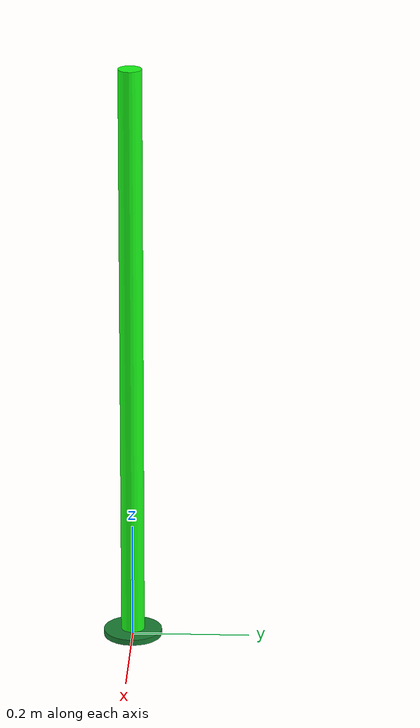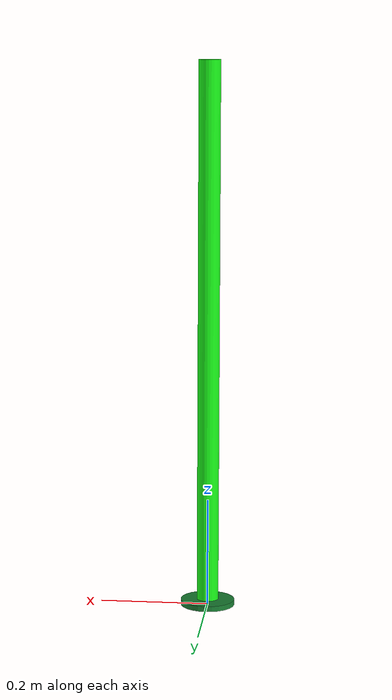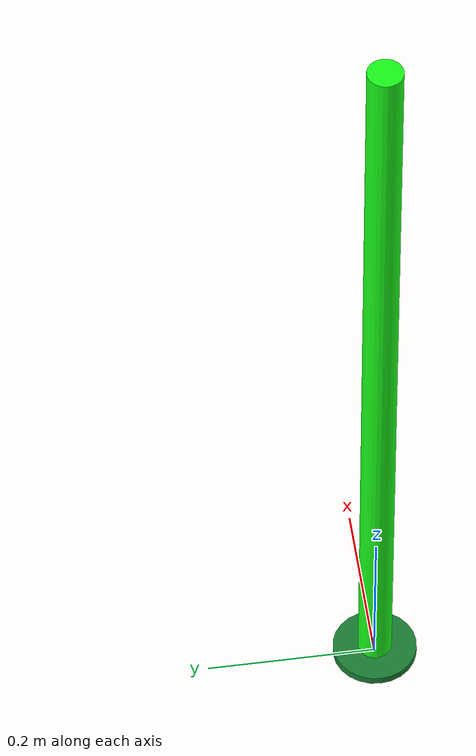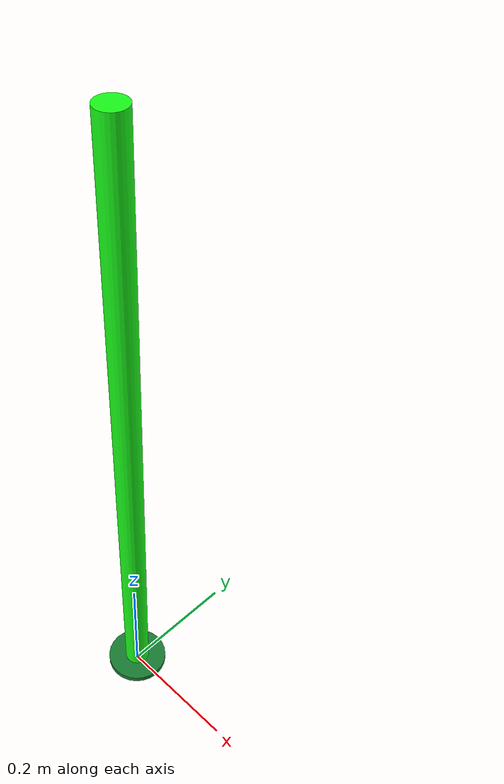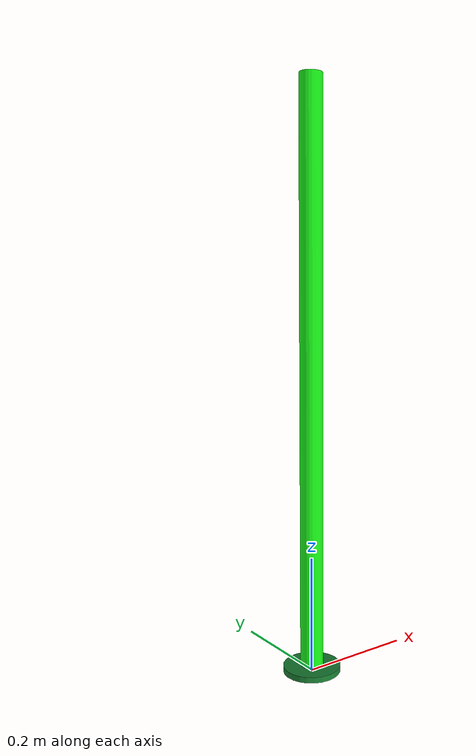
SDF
<?xml version="1.6" encoding="utf-8"?>
<!-- |    This document was autogenerated by xacro from plantgreen/plantgreen.xacro    | -->
<!-- |    EDITING THIS FILE BY HAND IS NOT RECOMMENDED                                 | -->
<sdf version="1.5">
  <!-- Square dimensions (widthxwidth) of beams -->
  <model name="plantgreen">
    <static>true</static>
    <link name="body">
      <pose>0 0 0.005 0 0 0</pose>
      <inertial>
        <mass> 0.1 </mass>
        <inertia>
          <ixx>0.000250833333333</ixx>
          <ixy>0</ixy>
          <ixz>0</ixz>
          <iyy>0.000250833333333</iyy>
          <iyz>0</iyz>
          <izz>0.0005</izz>
        </inertia>
      </inertial>
      <collision name="collision">
        <geometry>
          <cylinder>
            <length>0.01</length>
            <radius>0.05</radius>
          </cylinder>
        </geometry>

        <surface>
          <contact>
            <collide_bitmask>0x00</collide_bitmask>
          </contact>
        </surface>

      </collision>
      <visual name="visual">
        <geometry>
          <cylinder>
            <length>0.01</length>
            <radius>0.05</radius>
          </cylinder>
        </geometry>
        <material>
          <ambient>0.1 0.5 0.1 1</ambient>
          <diffuse>0.1 0.5 0.2 1</diffuse>
          <specular>0 0.5 0 0</specular>
          <emissive>0 0 0 1</emissive>
        </material>
      </visual>
    </link>
    <link name="stem">
      <pose>0 0 0.511 0 0 0</pose>
      <inertial>
        <mass> 0.01 </mass>
        <inertia>
          <ixx>0.000839583333333</ixx>
          <ixy>0</ixy>
          <ixz>0</ixz>
          <iyy>0.000839583333333</iyy>
          <iyz>0</iyz>
          <izz>1.25e-05</izz>
        </inertia>
      </inertial>
      <collision name="collision">
        <geometry>
          <cylinder>
            <length>1.0</length>
            <radius>0.02</radius>
          </cylinder>
        </geometry>

        <surface>
          <contact>
            <collide_bitmask>0x00</collide_bitmask>
          </contact>
        </surface>

      </collision>
      <visual name="visual">
        <geometry>
          <cylinder>
            <length>1.0</length>
            <radius>0.02</radius>
          </cylinder>
        </geometry>
        <material>
          <ambient>0.1 1 0.1 1</ambient>
          <diffuse>0.1 1 0.1 1</diffuse>
          <specular>0 1 0 0</specular>
          <emissive>0 0 0 1</emissive>
        </material>
      </visual>
    </link>
    <joint name="body_stem_joint" type="revolute">
      <parent>body</parent>
      <child>stem</child>
      <axis>
        <xyz>0 0 1</xyz>
        <limit>
          <upper>0</upper>
          <lower>0</lower>
        </limit>
      </axis>
    </joint>
  </model>
</sdf>
